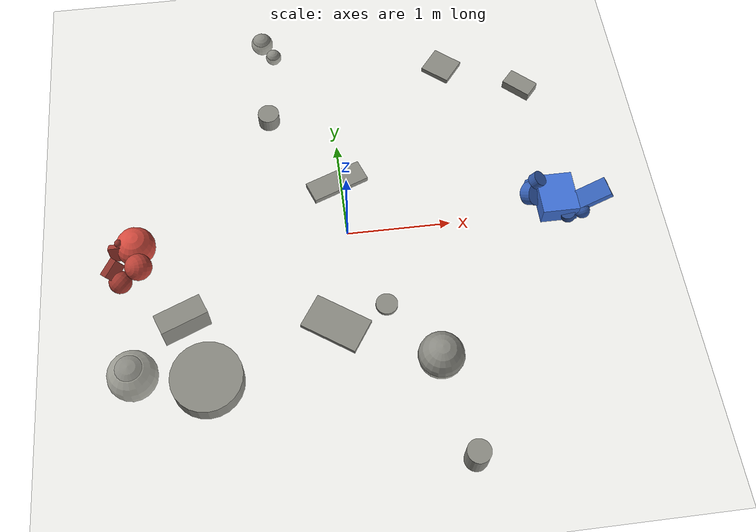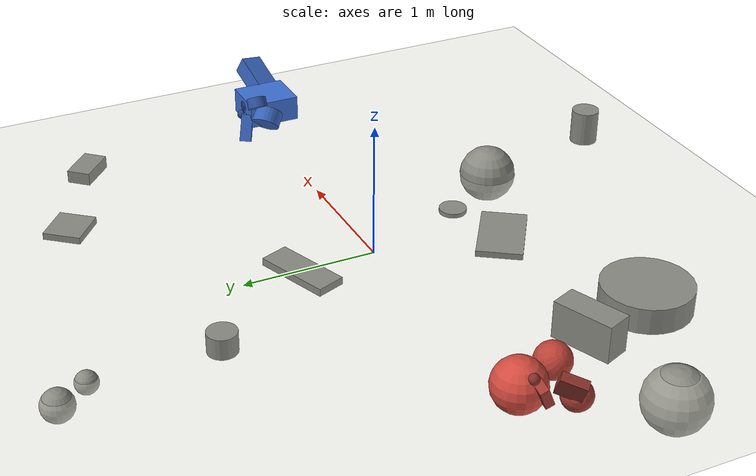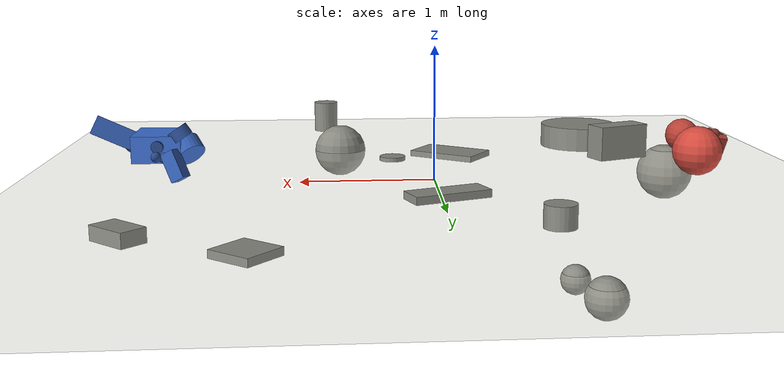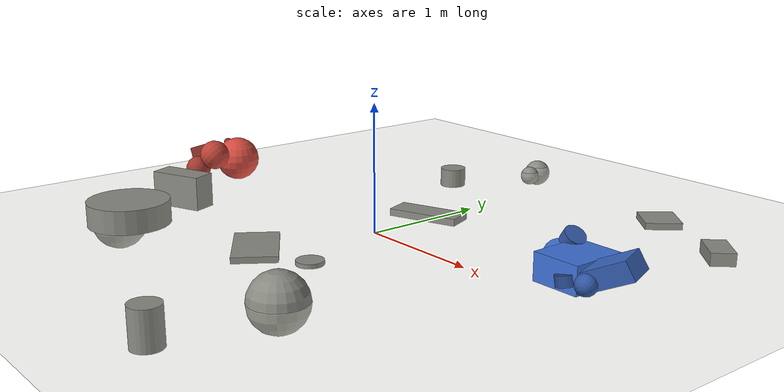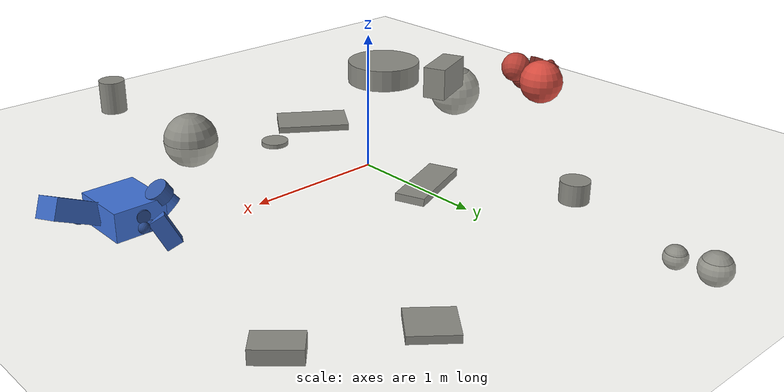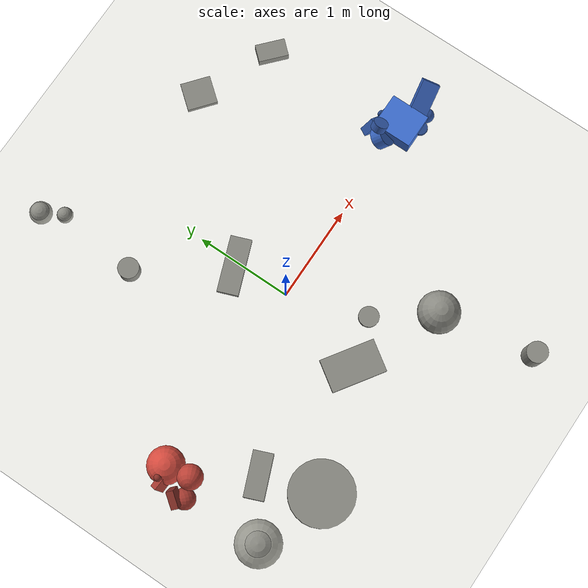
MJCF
<mujoco model="rabbitstew"><compiler angle="radian" autolimits="true" /><option timestep="0.005" gravity="0 0 -9.81" /><default><geom friction="1 0.005 0.0001" condim="3" solref="0.01 1" solimp="0.9 0.95 0.001" /><joint armature="0.005" /><motor ctrllimited="true" ctrlrange="-1 1" /></default><worldbody><geom name="floor" type="plane" size="0 0 1" rgba="0.85 0.85 0.8 1" /><light pos="0 0 4" dir="0 0 -1" diffuse="0.8 0.8 0.8" /><geom name="scenery0" pos="0.274393 -0.789465 0.0168193" quat="1 0 0 0" rgba="0.55 0.55 0.52 1" type="cylinder" size="0.103575 0.0168193" /><geom name="scenery1" pos="1.99224 1.51865 0.0488218" quat="0.359283 0 0 0.933228" rgba="0.55 0.55 0.52 1" type="box" size="0.15244 0.09049 0.0488218" /><geom name="scenery2" pos="-0.660292 2.49746 -0.0733741" quat="1 0 0 0" rgba="0.55 0.55 0.52 1" type="sphere" size="0.115593" /><geom name="scenery3" pos="-0.0430546 0.576472 0.0284663" quat="0.983827 0 0 0.179122" rgba="0.55 0.55 0.52 1" type="box" size="0.287547 0.108584 0.0284663" /><geom name="scenery4" pos="-0.654336 1.39896 0.077277" quat="1 0 0 0" rgba="0.55 0.55 0.52 1" type="cylinder" size="0.10688 0.077277" /><geom name="scenery5" pos="0.702605 -1.33104 -0.0148901" quat="1 0 0 0" rgba="0.55 0.55 0.52 1" type="sphere" size="0.216394" /><geom name="scenery6" pos="-1.42504 -1.21746 0.015152" quat="0.999509 0 0 0.0313454" rgba="0.55 0.55 0.52 1" type="box" size="0.212182 0.0766508 0.015152" /><geom name="scenery7" pos="1.2179 1.87812 0.0262678" quat="0.335719 0 0 0.941962" rgba="0.55 0.55 0.52 1" type="box" size="0.153828 0.143358 0.0262678" /><geom name="scenery8" pos="-2.11916 -1.11847 -0.205125" quat="1 0 0 0" rgba="0.55 0.55 0.52 1" type="sphere" size="0.236342" /><geom name="scenery9" pos="-1.59417 -0.771576 0.138429" quat="0.981845 0 0 0.189686" rgba="0.55 0.55 0.52 1" type="box" size="0.224354 0.0992864 0.138429" /><geom name="scenery10" pos="-0.213997 -0.928283 0.0236564" quat="0.292485 0 0 0.95627" rgba="0.55 0.55 0.52 1" type="box" size="0.281802 0.169326 0.0236564" /><geom name="scenery11" pos="0.840916 -2.30689 0.135354" quat="1 0 0 0" rgba="0.55 0.55 0.52 1" type="cylinder" size="0.106933 0.135354" /><geom name="scenery12" pos="-0.548658 2.27631 -0.0425263" quat="1 0 0 0" rgba="0.55 0.55 0.52 1" type="sphere" size="0.0815992" /><geom name="scenery13" pos="-1.39923 -1.35211 0.0957392" quat="1 0 0 0" rgba="0.55 0.55 0.52 1" type="cylinder" size="0.325485 0.0957392" /><body name="r0_p0" pos="-2 2.44929e-16 0.196105" quat="1 -0 -0 -6.12323e-17"><freejoint name="r0_root" /><geom type="sphere" size="0.186105" name="r0_g0" pos="0 0 0" mass="9.42265" rgba="0.850 0.300 0.250 1" /><body name="r0_p1" pos="-0.0486582 -0.176642 0.0326349" quat="0.874857 0.280637 -0.289669 -0.268252"><joint name="r0_j1" type="slide" axis="-0.435786 -0.104171 0.894002" damping="1.88453" range="-0.119473 0.119473" /><geom type="sphere" size="0.125949" name="r0_g1" pos="0.125949 0 0" mass="2.92066" rgba="0.748 0.264 0.220 1" /><body name="r0_p2" pos="-0.107008 0.0658987 0.00834792" quat="-0.10026 0.324568 -0.270316 0.900851"><joint name="r0_j2" type="slide" axis="-0.628276 -0.468607 -0.621029" damping="0.584131" range="-0.0529926 0.0529926" /><geom type="box" size="0.0614349 0.0764027 0.0317046" name="r0_g2" pos="0.0614349 0 0" mass="0.415475" rgba="0.646 0.228 0.190 1" /><body name="r0_p4" pos="-0.00582215 -0.0764027 0.0107828" quat="0.88476 0.111627 0.273319 -0.360603"><joint name="r0_j4" type="hinge" axis="0.702774 -0.161683 0.692796" damping="0.0161056" range="-1.15415 1.15415" /><geom type="sphere" size="0.0380496" name="r0_g4" pos="0.0380496 0 0" mass="0.0805282" rgba="0.544 0.192 0.160 1" /></body></body><body name="r0_p3" pos="0.0385943 -0.111292 0.0445834" quat="0.410996 0.209883 -0.430007 -0.775967"><joint name="r0_j3" type="slide" axis="-0.0445033 -0.722021 0.690438" damping="0.366368" range="-0.101171 0.101171" /><geom type="sphere" size="0.107811" name="r0_g3" pos="0.107811 0 0" mass="1.83184" rgba="0.646 0.228 0.190 1" /><body name="r0_p5" pos="0.0679865 -0.0270578 0.0791765" quat="0.421335 0.359229 -0.0830215 0.828576"><geom type="box" size="0.0720019 0.0895441 0.0371578" name="r0_g5" pos="0.0720019 0 0" mass="0.668853" rgba="0.544 0.192 0.160 1" /></body></body></body></body><body name="r1_p0" pos="2 -4.89859e-16 0.292479" quat="6.12323e-17 0 0 1"><freejoint name="r1_root" /><geom type="box" size="0.174103 0.200286 0.0967873" name="r1_g0" pos="0 0 0" mass="8.78139" rgba="0.250 0.450 0.850 1" /><body name="r1_p1" pos="0.174103 -0.0440019 0.024679" quat="0.767107 0.399203 0.213294 -0.454632"><joint name="r1_j1" type="ball" damping="1.75628" /><geom type="cylinder" size="0.111439 0.0593671" quat="0.707107 0 0.707107 0" name="r1_g1" pos="0.0593671 0 0" mass="1.50661" rgba="0.220 0.396 0.748 1" /><body name="r1_p4" pos="0.0263895 0.00738878 0.111194" quat="0.223253 0.11078 -0.954007 0.166605"><geom type="cylinder" size="0.076748 0.0408861" quat="0.707107 0 0.707107 0" name="r1_g4" pos="0.0408861 0 0" mass="0.492141" rgba="0.190 0.342 0.646 1" /></body></body><body name="r1_p2" pos="0.0969063 -0.200286 -0.0135157" quat="0.827599 0.0915006 0.507404 -0.22192"><joint name="r1_j2" type="slide" axis="-0.779104 -0.462911 0.422742" damping="1.75628" range="-0.166602 0.166602" /><geom type="box" size="0.106362 0.043848 0.0553281" name="r1_g2" pos="0.106362 0 0" mass="0.671383" rgba="0.220 0.396 0.748 1" /><body name="r1_p5" pos="-0.0309599 0.0117431 -0.0553281" quat="0.984841 0.147275 0.054602 -0.0735993"><joint name="r1_j5" type="slide" axis="0.772304 0.458807 -0.439365" damping="0.134277" range="-0.10815 0.10815" /><geom type="sphere" size="0.0460523" name="r1_g5" pos="0.0460523 0 0" mass="0.133058" rgba="0.190 0.342 0.646 1" /><body name="r1_p7" pos="-0.0379857 -0.026009 -0.00119732" quat="0.72425 -0.368818 -0.0722301 -0.578115"><geom type="cylinder" size="0.0437682 0.0233167" quat="0.707107 0 0.707107 0" name="r1_g7" pos="0.0233167 0 0" mass="0.0912773" rgba="0.160 0.288 0.544 1" /></body><body name="r1_p8" pos="0.0249953 -0.0362263 0.0135538" quat="0.833742 0.0236139 0.322381 -0.447647"><joint name="r1_j8" type="ball" damping="0.0266117" /><geom type="sphere" size="0.037221" name="r1_g8" pos="0.037221 0 0" mass="0.0702511" rgba="0.160 0.288 0.544 1" /></body></body></body><body name="r1_p3" pos="-0.174103 0.0800441 0.00246033" quat="0.088069 0.221053 -0.603555 0.760986"><joint name="r1_j3" type="ball" damping="1.75628" /><geom type="box" size="0.169012 0.0696756 0.0879177" name="r1_g3" pos="0.169012 0 0" mass="2.69379" rgba="0.220 0.396 0.748 1" /><body name="r1_p6" pos="-0.0491961 0.0186601 -0.0879177" quat="0.984841 0.147275 0.054602 -0.0735993"><joint name="r1_j6" type="slide" axis="0.772304 0.458807 -0.439365" damping="0.538758" range="-0.171854 0.171854" /><geom type="sphere" size="0.0731783" name="r1_g6" pos="0.0731783 0 0" mass="0.53387" rgba="0.190 0.342 0.646 1" /><body name="r1_p9" pos="-0.0603603 -0.0413289 -0.00190258" quat="0.72425 -0.368818 -0.0722301 -0.578115"><geom type="cylinder" size="0.0695487 0.0370508" quat="0.707107 0 0.707107 0" name="r1_g9" pos="0.0370508 0 0" mass="0.366232" rgba="0.160 0.288 0.544 1" /></body></body></body></body></worldbody><actuator><general name="r0_a1_0" joint="r0_j1" gaintype="fixed" biastype="affine" gainprm="37.6906" biasprm="0 -315.475 -31.5475" /><general name="r0_a2_0" joint="r0_j2" gaintype="fixed" biastype="affine" gainprm="11.6826" biasprm="0 0 -9.73552" /><motor name="r1_a1_2" joint="r1_j1" gear="0 0 35.1256" /><general name="r1_a2_0" joint="r1_j2" gaintype="fixed" biastype="affine" gainprm="35.1256" biasprm="0 -210.835 -21.0835" /><motor name="r1_a3_0" joint="r1_j3" gear="35.1256 0 0" /><motor name="r1_a3_2" joint="r1_j3" gear="0 0 35.1256" /><motor name="r1_a5_0" joint="r1_j5" gear="2.68553" /><motor name="r1_a6_0" joint="r1_j6" gear="10.7752" /><motor name="r1_a8_2" joint="r1_j8" gear="0 0 0.532234" /></actuator></mujoco>
